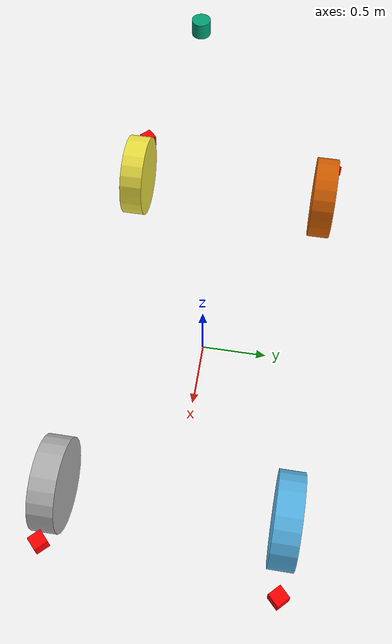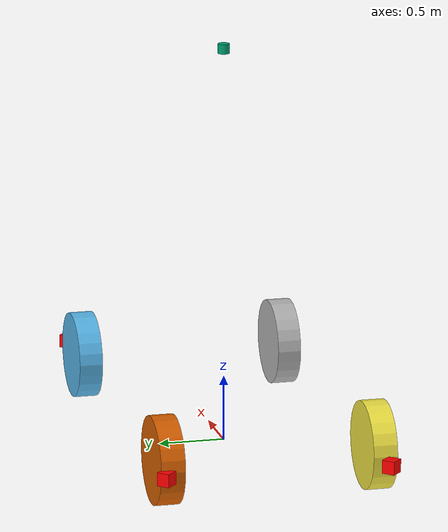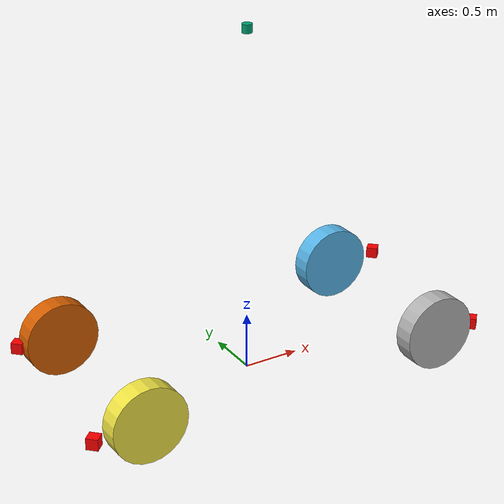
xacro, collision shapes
<?xml version="1.0"?>
<robot xmlns:xacro="http://www.ros.org/wiki/xacro" name="four_wheel_steering_robot">

  <xacro:property name="wheel_base" value="2.8"/>
  <xacro:property name="wheel_track" value="1.385"/>
  <xacro:property name="wheel_radius" value="0.3"/>
  <xacro:property name="max_steering_angle" value="0.31"/>
  <xacro:property name="min_steering_angle" value="-0.31"/>
  <xacro:property name="base_mass" value="1703.239"/> <!-- Mass value is incorrect as the intertias are wrong-->
  <xacro:property name="tyre_x" value="1.05"/>
  <xacro:property name="tyre_front_x" value="1.40"/>
  <xacro:property name="tyre_back_x" value="-1.40"/>
  <xacro:property name="tyre_y" value="0.6925"/>
  <xacro:property name="tyre_r" value="0"/>
  <xacro:property name="PI" value="3.1415926835897931"/>
  <!--Below is the thickness of the car's tyre-->
  <xacro:property name="tyre_length" value="0.18"/>

  <xacro:property name="tyre_radius" value="0.33"/>
  <xacro:property name="tyre_mass" value="20"/>

  <xacro:property name="tyre_mass_ixx" value="${((1/2)*tyre_mass*tyre_radius*tyre_radius)}"/>
  <xacro:property name="tyre_mass_iyy" value="${((1/12)*tyre_mass*tyre_length*tyre_length) + ((1/4)*tyre_mass*tyre_radius*tyre_radius)}"/>
  <xacro:property name="tyre_mass_izz" value="${((1/12)*tyre_mass*tyre_length*tyre_length) + ((1/4)*tyre_mass*tyre_radius*tyre_radius)}"/>
  <xacro:property name="tyre_mass_ixz" value="0.0"/>
  <xacro:property name="tyre_mass_ixy" value="0.0"/>
  <xacro:property name="tyre_mass_iyz" value="0.0"/>

  <xacro:property name="str_mass" value="50.00"/>
  <xacro:property name="str_length" value="0.05"/>
  <xacro:property name="str_radius" value="0.1"/>
  <xacro:property name="front_right_offset" value="0.05"/>
  <xacro:property name="str_mass_ixx" value="${((1/2)*str_mass*str_radius*str_radius)}"/>
  <xacro:property name="str_mass_iyy" value="${((1/12)*str_mass*str_length*str_length) + ((1/4)*str_mass*str_radius*str_radius)}"/>
  <xacro:property name="str_mass_izz" value="${((1/12)*str_mass*str_length*str_length) + ((1/4)*str_mass*str_radius*str_radius)}"/>

  <xacro:property name="str_angle" value="0.31"/>
  <xacro:property name="car_width" value="1.385"/>
  <xacro:property name="car_width_offset" value="0.05"/>

<xacro:property name="tyre_origin">
        <origin xyz="0 0 0" rpy="${PI/2} 0 0"/>
    </xacro:property>
    <xacro:property name="tyre_origin_2">
        <origin xyz="0 0 0" rpy="0 0 ${PI/2}"/>
    </xacro:property>
    <xacro:property name="tyre_origin_3">
        <origin xyz="0 0 0" rpy="0 0 ${-PI/2}"/>
    </xacro:property>

  <material name="white">
      <color rgba="1 1 1 1" />
  </material>

  <material name="orange">
      <color rgba="1 0.3 0.1 1"/>
  </material>

  <material name="blue">
      <color rgba="0.2 0.2 1 1"/>
  </material>

  <material name="black">
      <color rgba="0 0 0 1"/>
  </material>

  <material name="red">
      <color rgba="1 0 0 1"/>
  </material>

  <!-- Define robot links -->
  <link name="base_link">
    <visual>
      <origin xyz="0 0 0" rpy="0 0 -1.57079633"/>
      <geometry>
        <mesh filename="package://4ws_robot/meshes/gen0_colored.dae"/>
      </geometry>
    </visual>
  </link>

  <joint name="inertial_joint" type="fixed">
      <parent link="base_link"/>
      <child link="main_mass"/>
      <origin xyz="0 0 0" rpy="0 0 0"/>
  </joint>

  <link name="main_mass" type="fixed">
      <parent link="inertial_joint"/>
      <inertial>
          <origin xyz="0.0 0.0 0.0" rpy="0 0 0"/> <!-- This is the center of mass of Car Body-->
          <mass value="${base_mass}"/>
          <inertia
            ixx="347.195805" ixy="-11.4914985" ixz="18.5070628"
            iyy="2330.10026" iyz="3.97814264"
            izz="2529.41827"/>
      </inertial>
  </link>

    <joint name="back_right_steering_joint" type="revolute">
        <parent link="base_link"/>
        <child link="back_right_steering_link"/>
        <origin xyz="${tyre_back_x} ${-(car_width/2 + 2*str_length)} ${tyre_radius}" rpy="0 0 0"/>
        <axis xyz="0 0 1"/>
        <limit effort="10000" lower="${-str_angle}" upper="${str_angle}" velocity="1000"/>
    </joint>

    <link name="back_right_steering_link">
        <collision>
            <xacro:insert_block name="tyre_origin"/>
	        <geometry>
                <cylinder length="${str_length}" radius="${str_radius}"/>
       		</geometry>
        </collision>
        <visual>
            <xacro:insert_block name="tyre_origin"/>
            <geometry>
                <cylinder length="${str_length}" radius="${str_radius}"/>
            </geometry>
        </visual>

        <inertial>
            <origin xyz="0 0 0" rpy="0 0 0"/>
            <mass value="${str_mass}"/>
            <inertia
            ixx="${str_mass_ixx}"  ixy="0.000000"  ixz="0.000000"
            iyy="${str_mass_iyy}"  iyz="0.000000"
            izz="${str_mass_izz}"/>
        </inertial>
    </link>

    <joint name="back_right_wheel_joint" type="continuous">
        <parent link="back_right_steering_link"/>
        <child link="back_right_wheel_link"/>
        <origin xyz="0.0 0.0 0.0" rpy="0 0 0"/>
        <axis xyz="0 1 0"/>
        <dynamics damping="0.01"/>
        <limit effort="10000" velocity="5000" />
        <joint_properties damping="10" friction="1.0" />
    </joint>

    <link name="back_right_wheel_link">
        <collision>
            <origin xyz="0 0 0" rpy="${PI/2} 0 0"/>
            <geometry>
                <cylinder length="${tyre_length}" radius="${tyre_radius}"/>
                <!--mesh filename="package://catvehicle/meshes/ford_escape_wheel.dae"/-->
            </geometry>
            <surface>
                <friction>
                    <ode>
                        <mu>10000000</mu>
                        <mu2>7000</mu2>
                    </ode>
                </friction>
                <bounce>
                    <restitution_coefficient>0.0</restitution_coefficient>
                </bounce>
                <contact>
                    <ode>
                        <soft_cfm>0.001</soft_cfm>
                        <soft_erp>0.5</soft_erp>
                        <kp>10000000</kp>
                        <kd>1</kd>
                    </ode>
                </contact>
            </surface>
        </collision>

        <visual>
            <!--origin xyz="0 0 0" rpy="${PI/2} 0 0"/-->
            <origin xyz="0 ${car_width_offset*2} 0.0" rpy="0 0 ${-PI/2}"/>
            <geometry>
                <mesh scale="1.2 1 1" filename="package://4ws_robot/meshes/ezmile_gen0_wheel.obj"/>
            </geometry>
        </visual>

        <inertial>
            <origin xyz="0 0 0" rpy="0 0 0"/>
            <mass value="${tyre_mass}"/>
            <inertia
            ixx="${tyre_mass_ixx}"  ixy="${tyre_mass_ixy}"  ixz="${tyre_mass_ixz}"
            iyy="${tyre_mass_iyy}"  iyz="${tyre_mass_iyz}"
            izz="${tyre_mass_izz}"/>
        </inertial>
    </link>

    <!--Back Left Wheel -->

    <joint name="back_left_steering_joint" type="revolute">
        <parent link="base_link"/>
        <child link="back_left_steering_link"/>
        <origin xyz="${tyre_back_x} ${car_width/2 + 2*str_length} ${tyre_radius}" rpy="0 0 0"/>
        <axis xyz="0 0 1"/>
        <limit effort="10000" lower="${-str_angle}" upper="${str_angle}" velocity="1000"/>
    </joint>

    <link name="back_left_steering_link">
        <collision>
            <xacro:insert_block name="tyre_origin"/>
	        <geometry>
                <cylinder length="${str_length}" radius="${str_radius}"/>
       		</geometry>
        </collision>
        <visual>
            <xacro:insert_block name="tyre_origin"/>
            <geometry>
                <cylinder length="${str_length}" radius="${str_radius}"/>
            </geometry>
        </visual>

        <inertial>
            <origin xyz="0 0 0" rpy="0 0 0"/>
            <mass value="${str_mass}"/>
            <inertia
            ixx="${str_mass_ixx}"  ixy="0.000000"  ixz="0.000000"
            iyy="${str_mass_iyy}"  iyz="0.000000"
            izz="${str_mass_izz}"/>
        </inertial>
    </link>

    <joint name="back_left_wheel_joint" type="continuous">
        <parent link="back_left_steering_link"/>
        <child link="back_left_wheel_link"/>
        <origin xyz="0.0 0.0 0.0" rpy="0 0 0"/>
        <axis xyz="0 1 0"/>
        <dynamics damping="0.01"/>
        <limit effort="10000" velocity="5000" />
        <joint_properties damping="10" friction="1.0" />
    </joint>

    <link name="back_left_wheel_link">
        <collision>
            <origin xyz="0 0 0" rpy="${PI/2} 0 0"/>
            <geometry>
                <cylinder length="${tyre_length}" radius="${tyre_radius}"/>
                <!--mesh filename="package://ezmile_gen0/meshes/ford_escape_wheel.dae"/-->
            </geometry>
            <surface>
                <friction>
                    <ode>
                        <mu>10000000</mu>
                        <mu2>7000</mu2>
                    </ode>
                </friction>
                <bounce>
                    <restitution_coefficient>0.0</restitution_coefficient>
                </bounce>
                <contact>
                    <ode>
                        <soft_cfm>0.001</soft_cfm>
                        <soft_erp>0.5</soft_erp>
                        <kp>10000000</kp>
                        <kd>1</kd>
                    </ode>
                </contact>
            </surface>
        </collision>

        <visual>
            <!--origin xyz="0 0 0" rpy="${PI/2} 0 0"/-->
            <origin xyz="0 ${-car_width_offset*2} 0.0" rpy="0 0 ${PI/2}"/>
            <geometry>
                <!--cylinder length="${tyre_length}" radius="${tyre_radius}"/-->
                <mesh scale="1.2 1 1" filename="package://4ws_robot/meshes/ezmile_gen0_wheel.obj"/>
            </geometry>
        </visual>

        <inertial>

            <origin xyz="0 0 0" rpy="0 0 0"/>
            <mass value="${tyre_mass}"/>
            <inertia
            ixx="${tyre_mass_ixx}"  ixy="${tyre_mass_ixy}"  ixz="${tyre_mass_ixz}"
            iyy="${tyre_mass_iyy}"  iyz="${tyre_mass_iyz}"
            izz="${tyre_mass_izz}"/>
        </inertial>
    </link>

    <!--Right Steering-->

    <joint name="front_right_steering_joint" type="revolute">
        <parent link="base_link"/>
        <child link="front_right_steering_link"/>
        <origin xyz="${tyre_front_x} ${-car_width/2 - 2*str_length} ${tyre_radius}" rpy="0 0 0"/>
        <axis xyz="0 0 1"/>
        <limit effort="10000" lower="${-str_angle}" upper="${str_angle}" velocity="1000"/>
    </joint>

    <link name="front_right_steering_link">
        <collision>
            <xacro:insert_block name="tyre_origin"/>
	        <geometry>
                <cylinder length="${str_length}" radius="${str_radius}"/>
       		</geometry>
        </collision>
        <visual>
            <xacro:insert_block name="tyre_origin"/>
            <geometry>
                <cylinder length="${str_length}" radius="${str_radius}"/>
            </geometry>
        </visual>

        <inertial>
            <origin xyz="0 0 0" rpy="0 0 0"/>
            <mass value="${str_mass}"/>
            <inertia
            ixx="${str_mass_ixx}"  ixy="0.000000"  ixz="0.000000"
            iyy="${str_mass_iyy}"  iyz="0.000000"
            izz="${str_mass_izz}"/>
        </inertial>
    </link>

    <!--Front Right Wheel-->
    <joint name="front_right_wheel_joint" type="continuous">
        <parent link="front_right_steering_link"/>
        <child link="front_right_wheel_link"/>
        <origin xyz="0 0 0" rpy="0 0 0"/>
        <axis xyz="0 1 0"/>
        <dynamics damping="0.01"/>
        <limit effort="10000" velocity="5000"/>
        <joint_properties damping="10" friction="1.0" />
    </joint>

    <link name="front_right_wheel_link">
        <collision>
            <origin xyz="0 0 0" rpy="${PI/2} 0 0"/>
            <!--origin xyz="0 0 0" rpy="0 0 ${-PI/2}"/-->
            <geometry>
                <cylinder length="${tyre_length}" radius="${tyre_radius}"/>
                <!--mesh filename="package://ezmile_gen0/meshes/ford_escape_wheel.dae"/-->
            </geometry>

            <surface>
                <friction>
                    <ode>
                        <mu>10000000</mu>
                        <mu2>7000</mu2>
                    </ode>
                </friction>
                <bounce>
                    <restitution_coefficient>0.0</restitution_coefficient>
                </bounce>
                <contact>
                    <ode>
                        <soft_cfm>0.001</soft_cfm>
                        <soft_erp>0.5</soft_erp>
                        <kp>10000000</kp>
                        <kd>1</kd>
                    </ode>
                </contact>
            </surface>
        </collision>

        <visual>
            <!--origin xyz="0 0 0" rpy="${PI/2} 0 0"/-->
            <origin xyz="0 ${car_width_offset*2} 0.0" rpy="0 0 ${-PI/2}"/>
            <geometry>
                <mesh scale="1.2 1 1" filename="package://4ws_robot/meshes/ezmile_gen0_wheel.obj"/>
                </geometry>
        </visual>

        <inertial>
            <origin xyz="0 0 0" rpy="0 0 0"/>
            <mass value="${tyre_mass}"/>
            <inertia
            ixx="${tyre_mass_ixx}"  ixy="${tyre_mass_ixy}"  ixz="${tyre_mass_ixz}"
            iyy="${tyre_mass_iyy}"  iyz="${tyre_mass_iyz}"
            izz="${tyre_mass_izz}"/>
        </inertial>
    </link>

    <!--Left Steering-->
    <joint name="front_left_steering_joint" type="revolute">
        <parent link="base_link"/>
        <child link="front_left_steering_link"/>
        <origin xyz="${tyre_front_x} ${car_width/2 + 2*str_length} ${tyre_radius}" rpy="0 0 0"/>
        <axis xyz="0 0 1"/>
        <limit effort="10000" lower="${-str_angle}" upper="${str_angle}" velocity="1000"/>
    </joint>

    <link name="front_left_steering_link">
        <parent link="base_link"/>
        <collision>
            <xacro:insert_block name="tyre_origin"/>
            <geometry>
                <cylinder length="${str_length}" radius="${str_radius}"/>
            </geometry>
        </collision>
        <visual>
            <xacro:insert_block name="tyre_origin"/>
            <geometry>
                <cylinder length="${str_length}" radius="${str_radius}"/>
            </geometry>
        </visual>
        <inertial>
            <origin xyz="0 0 0" rpy="0 0 0"/>
            <mass value="${str_mass}"/>
            <inertia
            ixx="${str_mass_ixx}"  ixy="0.000000"  ixz="0.000000"
            iyy="${str_mass_iyy}"  iyz="0.000000"
            izz="${str_mass_izz}"/>
        </inertial>
    </link>

<!--Front Left Wheel-->

    <joint name="front_left_wheel_joint" type="continuous">
          <parent link="front_left_steering_link"/>
          <child link="front_left_wheel_link"/>
          <origin xyz="0 0 0" rpy="0 0 0"/>
          <axis xyz="0 1 0"/>
          <dynamics damping="0.01"/>
          <limit effort="10000" velocity="5000" />
          <joint_properties damping="10" friction="1.0" />

    </joint>

    <link name="front_left_wheel_link">
        <parent link="front_left_wheel_joint"/>
        <collision>
            <origin xyz="0 0 0" rpy="${PI/2} 0 0"/>
            <!--origin xyz="0 0 0" rpy="0 0 ${PI/2}"/-->
            <geometry>
                <cylinder length="${tyre_length}" radius="${tyre_radius}"/>
                <!--mesh filename="package://ezmile_gen0/meshes/ford_escape_wheel.dae"/-->
            </geometry>
            <surface>
                <friction>
                    <ode>
                        <mu>10000000</mu>
                        <mu2>7000</mu2>
                    </ode>
                </friction>
                <bounce>
                    <restitution_coefficient>0.0</restitution_coefficient>
                </bounce>
                <contact>
                    <ode>
                        <soft_cfm>0.001</soft_cfm>
                        <soft_erp>0.5</soft_erp>
                        <kp>10000000</kp>
                        <kd>1</kd>
                    </ode>
                </contact>
            </surface>
        </collision>

        <visual>
            <!--origin xyz="0 0 0" rpy="${PI/2} 0 0"/-->
            <origin xyz="0 ${-car_width_offset*2} 0.0" rpy="0 0 ${PI/2}"/>
            <geometry>
            <!--cylinder length="${tyre_length}" radius="${tyre_radius}"/-->
            <mesh scale="1.2 1 1" filename="package://4ws_robot/meshes/ezmile_gen0_wheel.obj"/>
            </geometry>
        </visual>

        <inertial>
            <origin xyz="0 0 0" rpy="0 0 0"/>
            <mass value="${tyre_mass}"/>
            <inertia
            ixx="${tyre_mass_ixx}"  ixy="${tyre_mass_ixy}"  ixz="${tyre_mass_ixz}"
            iyy="${tyre_mass_iyy}"  iyz="${tyre_mass_iyz}"
            izz="${tyre_mass_izz}"/>
        </inertial>
    </link>

<!-- Lidars to be installed -->

  <xacro:include filename="$(find 4ws_robot)/urdf/os1_64.urdf.xacro"/>
  <xacro:os1_64 parent="base" name="ouster" prefix="/os1_cloud_node" hz="10" samples="512">
    <origin xyz="0 0 3.0" rpy="0 0 0" />
  </xacro:os1_64>

<!-- Lidars to be installed -->

<joint name="sick_lidar_fl_joint" type="fixed">
    <axis xyz="0 1 0" />
    <origin xyz="1.9 0.8 0.3" rpy="${PI} 0 ${3*PI/4}"/>
    <parent link="base_link"/>
    <child link="sick_lidar_fl_link"/>
  </joint>

  <link name="sick_lidar_fl_link">
    <collision>
      <origin xyz="0 0 0" rpy="0 0 0"/>
      <geometry>
    <box size="0.1 0.1 0.1"/>
      </geometry>
    </collision>

    <visual>
      <origin xyz="0 0 0" rpy="0 0 0"/>
      <geometry>
        <cylinder length="0.1" radius="0.03"/>
      </geometry>
         <material name="red"/>
    </visual>

    <inertial>
      <mass value="1e-5" />
      <origin xyz="0 0 0" rpy="0 0 0"/>
      <inertia ixx="1e-6" ixy="0" ixz="0" iyy="1e-6" iyz="0" izz="1e-6" />
    </inertial>
  </link>

<joint name="sick_lidar_fr_joint" type="fixed">
    <axis xyz="0 1 0" />
    <origin xyz="1.8 -0.8 0.3" rpy="${PI} 0 ${PI/4}"/>
    <parent link="base_link"/>
    <child link="sick_lidar_fr_link"/>
  </joint>

  <link name="sick_lidar_fr_link">
    <collision>
      <origin xyz="0 0 0" rpy="0 0 0"/>
      <geometry>
    <box size="0.1 0.1 0.1"/>
      </geometry>
    </collision>

    <visual>
      <origin xyz="0 0 0" rpy="0 0 0"/>
      <geometry>
       <cylinder length="0.1" radius="0.03"/>
      </geometry>
        <material name="red"/>
    </visual>

    <inertial>
      <mass value="1e-5" />
      <origin xyz="0 0 0" rpy="0 0 0"/>
      <inertia ixx="1e-6" ixy="0" ixz="0" iyy="1e-6" iyz="0" izz="1e-6" />
    </inertial>
  </link>

  <joint name="sick_lidar_rl_joint" type="fixed">
    <axis xyz="0 1 0" />
    <origin xyz="-1.75 0.85 0.3" rpy="${PI} 0 ${5*PI/4}"/>
    <parent link="base_link"/>
    <child link="sick_lidar_rl_link"/>
  </joint>

  <link name="sick_lidar_rl_link">
    <collision>
      <origin xyz="0 0 0" rpy="0 0 0"/>
      <geometry>
    <box size="0.1 0.1 0.1"/>
      </geometry>
    </collision>

    <visual>
      <origin xyz="0 0 0" rpy="0 0 0"/>
      <geometry>
        <cylinder length="0.1" radius="0.03"/>
      </geometry>
        <material name="red"/>
    </visual>

    <inertial>
      <mass value="1e-5" />
      <origin xyz="0 0 0" rpy="0 0 0"/>
      <inertia ixx="1e-6" ixy="0" ixz="0" iyy="1e-6" iyz="0" izz="1e-6" />
    </inertial>
  </link>

    <joint name="sick_lidar_rr_joint" type="fixed">
    <axis xyz="0 1 0" />
    <origin xyz="-1.85 -0.8 0.3" rpy="${PI} 0 ${-PI/4}"/>
    <parent link="base_link"/>
    <child link="sick_lidar_rr_link"/>
  </joint>

  <link name="sick_lidar_rr_link">
    <collision>
      <origin xyz="0 0 0" rpy="0 0 0"/>
      <geometry>
    <box size="0.1 0.1 0.1"/>
      </geometry>
    </collision>

    <visual>
      <origin xyz="0 0 0" rpy="0 0 0"/>
      <geometry>
        <cylinder length="0.1" radius="0.03"/>
      </geometry>
        <material name="red"/>
    </visual>

    <inertial>
      <mass value="1e-5" />
      <origin xyz="0 0 0" rpy="0 0 0"/>
      <inertia ixx="1e-6" ixy="0" ixz="0" iyy="1e-6" iyz="0" izz="1e-6" />
    </inertial>
  </link>

<!-- motors and transmissions for the two rear wheels -->
    <transmission name="tran1">
        <type>transmission_interface/SimpleTransmission</type>
        <joint name="back_right_wheel_joint">
            <hardwareInterface>hardware_interface/VelocityJointInterface</hardwareInterface>
        </joint>
        <actuator name="motor1">
            <hardwareInterface>hardware_interface/VelocityJointInterface</hardwareInterface>
            <mechanicalReduction>1</mechanicalReduction>
        </actuator>
    </transmission>

    <transmission name="tran2">
        <type>transmission_interface/SimpleTransmission</type>
        <joint name="back_left_wheel_joint">
            <hardwareInterface>hardware_interface/VelocityJointInterface</hardwareInterface>
        </joint>
        <actuator name="motor2">
            <hardwareInterface>hardware_interface/VelocityJointInterface</hardwareInterface>
            <mechanicalReduction>1</mechanicalReduction>
        </actuator>
    </transmission>

    <transmission name="tran3">
        <type>transmission_interface/SimpleTransmission</type>
        <joint name="front_right_wheel_joint">
            <hardwareInterface>hardware_interface/VelocityJointInterface</hardwareInterface>
        </joint>
        <actuator name="motor3">
            <hardwareInterface>hardware_interface/VelocityJointInterface</hardwareInterface>
            <mechanicalReduction>1</mechanicalReduction>
        </actuator>
    </transmission>

    <transmission name="tran4">
        <type>transmission_interface/SimpleTransmission</type>
        <joint name="front_left_wheel_joint">
            <hardwareInterface>hardware_interface/VelocityJointInterface</hardwareInterface>
        </joint>
        <actuator name="motor4">
            <hardwareInterface>hardware_interface/VelocityJointInterface</hardwareInterface>
            <mechanicalReduction>1</mechanicalReduction>
        </actuator>
    </transmission>

    <transmission name="steering_back_left_transmission">
        <type>transmission_interface/SimpleTransmission</type>
        <joint name="back_left_steering_joint">
            <hardwareInterface>hardware_interface/PositionJointInterface</hardwareInterface>
        </joint>

        <actuator name="steering_back_left_acutator">
            <hardwareInterface>hardware_interface/PositionJointInterface</hardwareInterface>
            <mechanicalReduction>1</mechanicalReduction>
        </actuator>
    </transmission>

    <transmission name="steering_back_right_transmission">
        <type>transmission_interface/SimpleTransmission</type>
        <joint name="back_right_steering_joint">
            <hardwareInterface>hardware_interface/PositionJointInterface</hardwareInterface>
        </joint>

        <actuator name="steering_back_right_acutator">
            <hardwareInterface>hardware_interface/PositionJointInterface</hardwareInterface>
            <mechanicalReduction>1</mechanicalReduction>
        </actuator>
    </transmission>

    <transmission name="steering_front_left_transmission">
        <type>transmission_interface/SimpleTransmission</type>
        <joint name="front_left_steering_joint">
            <hardwareInterface>hardware_interface/PositionJointInterface</hardwareInterface>
        </joint>

        <actuator name="steering_front_left_acutator">
            <hardwareInterface>hardware_interface/PositionJointInterface</hardwareInterface>
            <mechanicalReduction>1</mechanicalReduction>
        </actuator>
    </transmission>

    <transmission name="steering_front_right_transmission">
        <type>transmission_interface/SimpleTransmission</type>
        <joint name="front_right_steering_joint">
            <hardwareInterface>hardware_interface/PositionJointInterface</hardwareInterface>
        </joint>

        <actuator name="steering_front_right_acutator">
            <hardwareInterface>hardware_interface/PositionJointInterface</hardwareInterface>
            <mechanicalReduction>1</mechanicalReduction>
        </actuator>
    </transmission>

<gazebo>
  <plugin name="gazebo_ros_control" filename="libgazebo_ros_control.so">
    <robotNamespace>/4ws</robotNamespace>
    <robotSimType>gazebo_ros_control/DefaultRobotHWSim</robotSimType>
  </plugin>
</gazebo>

<gazebo reference="sick_lidar_fl_link">
    <sensor type="ray" name="sick_lidar_fl">
      <pose>0 0 0 0 0 0</pose>
      <visualize>false</visualize>
      <update_rate>40</update_rate>
      <ray>
        <scan>
          <horizontal>
            <samples>720</samples>
            <resolution>1</resolution>
            <min_angle>0</min_angle>
            <max_angle>3.141592</max_angle>
          </horizontal>
        </scan>
        <range>
          <min>0.5</min>
          <max>30.0</max>
          <resolution>0.01</resolution>
        </range>
        <noise>
          <type>gaussian</type>
          <mean>0.0</mean>
          <stddev>0.01</stddev>
        </noise>
      </ray>
      <plugin name="gazebo_ros_fl_lidar" filename="libgazebo_ros_laser.so">
        <topicName>sick_lidar_fl/scan</topicName>
        <frameName>sick_lidar_fl_link</frameName>
      </plugin>
    </sensor>
  </gazebo>

<gazebo reference="sick_lidar_fr_link">
    <sensor type="ray" name="sick_lidar_fr">
      <pose>0 0 0 0 0 0</pose>
      <visualize>false</visualize>
      <update_rate>40</update_rate>
      <ray>
        <scan>
          <horizontal>
            <samples>720</samples>
            <resolution>1</resolution>
            <min_angle>0</min_angle>
            <max_angle>3.141592</max_angle>
          </horizontal>
        </scan>
        <range>
          <min>0.5</min>
          <max>30.0</max>
          <resolution>0.01</resolution>
        </range>
        <noise>
          <type>gaussian</type>
          <mean>0.0</mean>
          <stddev>0.01</stddev>
        </noise>
      </ray>
      <plugin name="gazebo_ros_fr_lidar" filename="libgazebo_ros_laser.so">
        <topicName>sick_lidar_fr/scan</topicName>
        <frameName>sick_lidar_fr_link</frameName>
      </plugin>
    </sensor>
    </gazebo>

    <gazebo reference="sick_lidar_rl_link">
    <sensor type="ray" name="sick_lidar_rl">
      <pose>0 0 0 0 0 0</pose>
      <visualize>false</visualize>
      <update_rate>40</update_rate>
      <ray>
        <scan>
          <horizontal>
            <samples>720</samples>
            <resolution>1</resolution>
            <min_angle>0</min_angle>
            <max_angle>3.141592</max_angle>
          </horizontal>
        </scan>
        <range>
          <min>0.5</min>
          <max>30.0</max>
          <resolution>0.01</resolution>
        </range>
        <noise>
          <type>gaussian</type>
          <mean>0.0</mean>
          <stddev>0.01</stddev>
        </noise>
      </ray>
      <plugin name="gazebo_ros_rl_lidar" filename="libgazebo_ros_laser.so">
        <topicName>sick_lidar_rl/scan</topicName>
        <frameName>sick_lidar_rl_link</frameName>
      </plugin>
    </sensor>
    </gazebo>

    <gazebo reference="sick_lidar_rr_link">
    <sensor type="ray" name="sick_lidar_rr">
      <pose>0 0 0 0 0 0</pose>
      <visualize>false</visualize>
      <update_rate>40</update_rate>
      <ray>
        <scan>
          <horizontal>
            <samples>720</samples>
            <resolution>1</resolution>
            <min_angle>0</min_angle>
            <max_angle>3.141592</max_angle>
          </horizontal>
        </scan>
        <range>
          <min>0.5</min>
          <max>30.0</max>
          <resolution>0.01</resolution>
        </range>
        <noise>
          <type>gaussian</type>
          <mean>0.0</mean>
          <stddev>0.01</stddev>
        </noise>
      </ray>
      <plugin name="gazebo_ros_rr_lidar" filename="libgazebo_ros_laser.so">
        <topicName>sick_lidar_rr/scan</topicName>
        <frameName>sick_lidar_rr_link</frameName>
      </plugin>
    </sensor>
    </gazebo>

<!-- COLORS -->

   <material name="Red"> -->
    <color rgba="${255/255} ${0} ${0} 1.0"/>
  </material>

<gazebo reference="sick_lidar_rr_link">
    <material>Gazebo/Red</material>
  </gazebo>

  <gazebo reference="sick_lidar_rl_link">
    <material>Gazebo/Red</material>
  </gazebo>

  <gazebo reference="sick_lidar_fr_link">
    <material>Gazebo/Red</material>
  </gazebo>

  <gazebo reference="sick_lidar_fl_link">
    <material>Gazebo/Red</material>
  </gazebo>

</robot>

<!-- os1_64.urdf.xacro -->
<!-- Modified from the work of Wil Selby (https://github.com/wilselby/ouster_example/blob/master/ouster_description/urdf/OS1-64.urdf.xacro) -->
<robot xmlns:xacro="http://ros.org/wiki/xacro" name="os1_64">
  <xacro:property name="PI" value="3.1415926535897931"/>

  <xacro:macro name="os1_64" params="*origin parent:=base name:=ouster reduced:=true prefix:=/os1_cloud_node hz:=10 samples:=512 min_range:=1.5 max_range:=30 noise:=0.008 min_angle_v:=-16.6 max_angle_v:=16.6 gpu:=true">

    <!-- Conditional properties -->
    <xacro:if value="${reduced}">
      <xacro:property name="file_visual" value="os1_64_reduced"/>
    </xacro:if>
    <xacro:unless value="${reduced}">
      <xacro:property name="file_visual" value="os1_64"/>
    </xacro:unless>

    <xacro:if value="${gpu}">
      <xacro:property name="gpu_str" value="gpu_"/>
    </xacro:if>
    <xacro:unless value="${gpu}">
      <xacro:property name="gpu_str" value=""/>
    </xacro:unless>

    <joint name="${name}_joint" type="fixed">
      <xacro:insert_block name="origin" />
      <parent link="${parent}_link"/>
      <child link="${name}_sensor"/>
    </joint>

    <link name="${name}_sensor">
      <inertial>
        <mass value="0.425"/>
        <origin xyz="0 0 0.03675" rpy="0 0 0" />
        <inertia ixx="0.000308429" ixy="0" ixz="0"
                 iyy="0.000308429" iyz="0" izz="0.00034589"/>
      </inertial>
      <collision name="lidar_collision">
        <origin xyz="0 0 0.03675" rpy="0 0 0" />
        <geometry>
          <cylinder radius="0.04350" length="0.07350"/>
        </geometry>
      </collision>
      <visual name="lidar_visual">
        <origin xyz="0 0 0" rpy="0 0 0"/>
        <geometry>
          <mesh filename="package://ouster_os1_64/meshes/${file_visual}.stl" />
        </geometry>
      </visual>
    </link>

    <link name="${name}_lidar">
      <pose>0 0 0 0 0 ${PI}</pose>
    </link>
    <joint name="${name}_lidar_joint" type="fixed">
      <parent link="${name}_sensor"/>
      <child link="${name}_lidar"/>
    </joint>

    <gazebo reference="${name}_lidar">
      <sensor type="${gpu_str}ray" name="${name}_lidar">
        <pose>0 0 0 0 0 0</pose>
        <visualize>false</visualize>
        <update_rate>${hz}</update_rate>
        <ray>
          <scan>
            <vertical>
              <samples>64</samples>
              <resolution>1</resolution>
              <min_angle>${min_angle_v*PI/180.0}</min_angle>
              <max_angle>${max_angle_v*PI/180.0}</max_angle>
            </vertical>
            <horizontal>
              <samples>${samples}</samples>
              <resolution>1</resolution>
              <min_angle>-${PI}</min_angle>
              <max_angle>${PI}</max_angle>
            </horizontal>
          </scan>
          <range>
            <min>${min_range}</min>
            <max>${max_range}</max>
            <resolution>0.03</resolution>
          </range>
          <noise>
            <type>gaussian</type>
            <mean>0.0</mean>
            <stddev>0.000000000001</stddev>
          </noise>
        </ray>
        <plugin name="gazebo_ros_laser_controller" filename="libgazebo_ros_ouster_${gpu_str}laser.so">
          <topicName>${prefix}/points</topicName>
          <frameName>${name}_lidar</frameName>
          <min_range>${min_range}</min_range>
          <max_range>${max_range}</max_range>
          <gaussianNoise>${noise}</gaussianNoise>
        </plugin>
      </sensor>
    </gazebo>

    <link name="${name}_imu"/>
    <joint name="${name}_imu_joint" type="fixed">
      <parent link="${name}_sensor"/>
      <child link="${name}_imu"/>
    </joint>

    <gazebo reference="${name}_imu">
      <sensor type="imu" name="${name}_imu_sensor">
        <pose>0 0 0 0 0 0</pose>
        <always_on>true</always_on>
        <update_rate>100</update_rate>
        <visualize>true</visualize>
        <topic>${prefix}/imu</topic>
      </sensor>
    </gazebo>

  </xacro:macro>
</robot>
